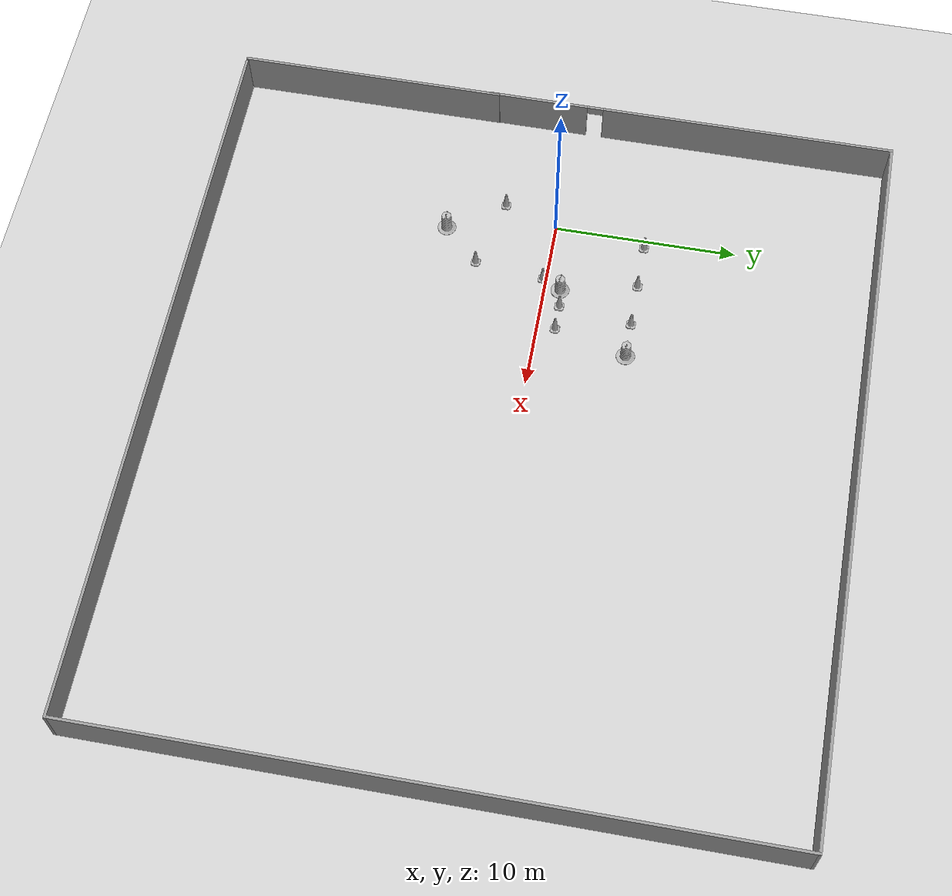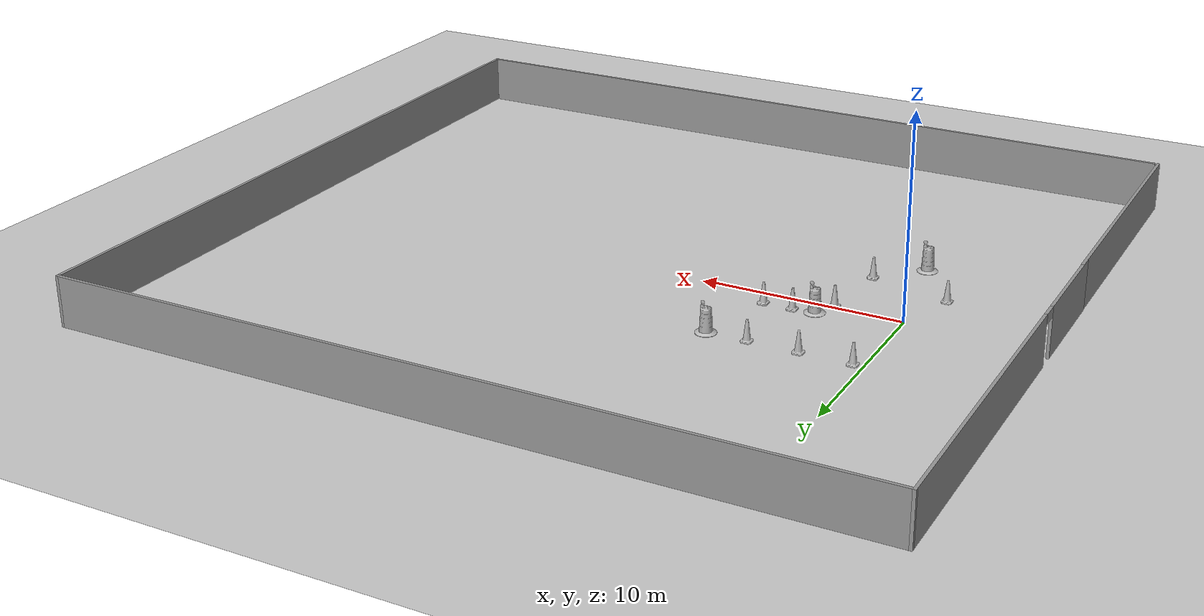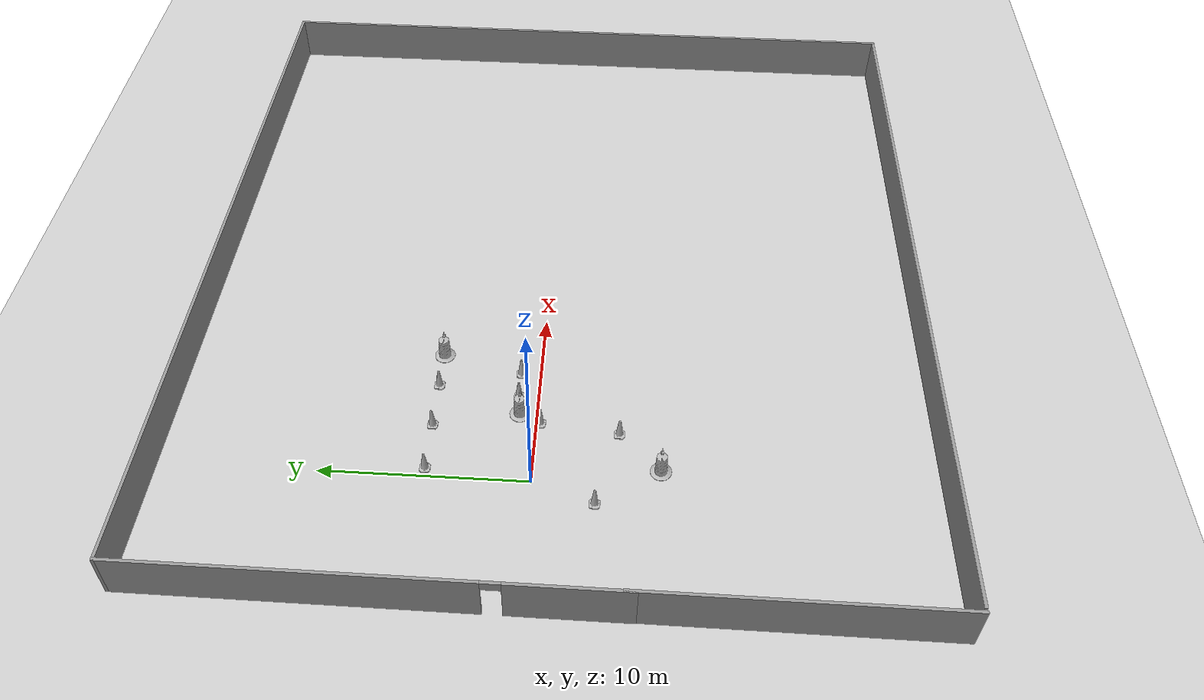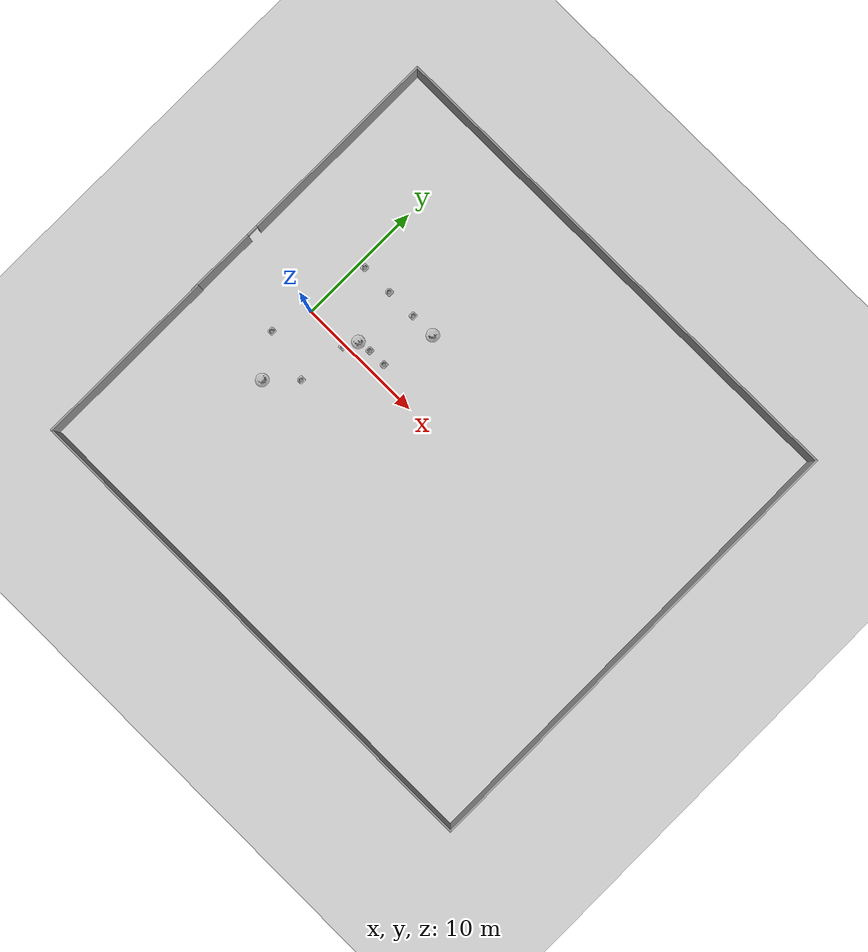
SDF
<sdf version="1.7">
 <world name="default">
  <plugin name="gazebo_ros_state" filename="libgazebo_ros_state.so"><update_rate>1.0</update_rate></plugin>
  <plugin name="gazebo_ros_properties" filename="libgazebo_ros_properties.so"/>
  <light name="sun" type="directional">
   <pose>0 0 10 0 -0 0</pose>
   <diffuse>0.8 0.8 0.8 1</diffuse>
   <specular>0.2 0.2 0.2 1</specular>
   <attenuation>
    <range>1000</range>
    <constant>0.9</constant>
    <linear>0.01</linear>
    <quadratic>0.001</quadratic>
   </attenuation>
   <direction>-0.5 0.1 -0.9</direction>
   <spot><inner_angle>0</inner_angle><outer_angle>0</outer_angle><falloff>0</falloff></spot>
  </light>
  <model name="ground_plane">
   <static>1</static>
   <link name="link">
    <collision name="collision">
     <geometry><plane><normal>0 0 1</normal><size>100 100</size></plane></geometry>
     <surface>
      <contact><collide_bitmask>65535</collide_bitmask></contact>
      <friction><ode><mu>100</mu><mu2>50</mu2></ode></friction>
     </surface>
    </collision>
    <visual name="visual">
     <cast_shadows>0</cast_shadows>
     <geometry><plane><normal>0 0 1</normal><size>100 100</size></plane></geometry>
     <material>
      <script><uri>file://media/materials/scripts/gazebo.material</uri><name>Gazebo/Grey</name></script>
     </material>
    </visual>
   </link>
  </model>
  <gravity>0 0 -9.8</gravity>
  <magnetic_field>6e-06 2.3e-05 -4.2e-05</magnetic_field>
  <atmosphere type="adiabatic"/>
  <physics type="ode">
   <max_step_size>0.001</max_step_size>
   <real_time_factor>1</real_time_factor>
   <real_time_update_rate>1000</real_time_update_rate>
  </physics>
  <scene><ambient>0.4 0.4 0.4 1</ambient><background>0.7 0.7 0.7 1</background><shadows>1</shadows></scene>
  <spherical_coordinates>
   <surface_model>EARTH_WGS84</surface_model>
   <latitude_deg>0</latitude_deg>
   <longitude_deg>0</longitude_deg>
   <elevation>0</elevation>
   <heading_deg>0</heading_deg>
  </spherical_coordinates>
  <model name="Construction Barrel">
   <link name="link">
    <inertial>
     <pose>0 0 0.4 0 -0 0</pose>
     <mass>500</mass>
     <inertia><ixx>51.2096</ixx><iyy>51.2096</iyy><izz>25</izz><ixy>0</ixy><ixz>0</ixz><iyz>0</iyz></inertia>
    </inertial>
    <collision name="collision">
     <geometry><mesh><uri>model://construction_barrel/meshes/construction_barrel.dae</uri></mesh></geometry>
    </collision>
    <visual name="visual">
     <geometry><mesh><uri>model://construction_barrel/meshes/construction_barrel.dae</uri></mesh></geometry>
    </visual>
   </link>
   <pose>3.96011 0.865139 -1e-06 4e-06 -2e-06 -2.8e-05</pose>
  </model>
  <model name="Construction Cone">
   <link name="link">
    <collision name="collision">
     <geometry>
      <mesh><scale>10 10 10</scale><uri>model://construction_cone/meshes/construction_cone.dae</uri></mesh>
     </geometry>
    </collision>
    <visual name="visual">
     <geometry>
      <mesh><scale>10 10 10</scale><uri>model://construction_cone/meshes/construction_cone.dae</uri></mesh>
     </geometry>
    </visual>
    <inertial>
     <inertia><ixx>1</ixx><ixy>0</ixy><ixz>0</ixz><iyy>1</iyy><iyz>0</iyz><izz>1</izz></inertia>
     <mass>1</mass>
    </inertial>
   </link>
   <pose>3.4179 -0.176792 -9e-06 0 -0 0</pose>
  </model>
  <model name="Square_house">
   <pose>13.1962 -0.676405 0 0 -0 0</pose>
   <link name="Wall_1">
    <pose>-19.9248 7.0236 0 0 -0 1.5708</pose>
    <visual name="Wall_1_Visual_0">
     <pose>-8.56298 0 1.25 0 -0 0</pose>
     <geometry><box><size>5.62404 0.15 2.5</size></box></geometry>
     <material>
      <script><uri>file://media/materials/scripts/gazebo.material</uri><name>Gazebo/Grey</name></script>
      <ambient>1 1 1 1</ambient>
     </material>
     <meta><layer>0</layer></meta>
    </visual>
    <collision name="Wall_1_Collision_0">
     <geometry><box><size>5.62404 0.15 2.5</size></box></geometry>
     <pose>-8.56298 0 1.25 0 -0 0</pose>
    </collision>
    <visual name="Wall_1_Visual_1">
     <pose>3.26202 0 1.25 0 -0 0</pose>
     <geometry><box><size>16.226 0.15 2.5</size></box></geometry>
     <material>
      <script><uri>file://media/materials/scripts/gazebo.material</uri><name>Gazebo/Grey</name></script>
      <ambient>1 1 1 1</ambient>
     </material>
     <meta><layer>0</layer></meta>
    </visual>
    <collision name="Wall_1_Collision_1">
     <geometry><box><size>16.226 0.15 2.5</size></box></geometry>
     <pose>3.26202 0 1.25 0 -0 0</pose>
    </collision>
    <visual name="Wall_1_Visual_2">
     <pose>-5.30096 0 2.25 0 -0 0</pose>
     <geometry><box><size>0.9 0.15 0.5</size></box></geometry>
     <material>
      <script><uri>file://media/materials/scripts/gazebo.material</uri><name>Gazebo/Grey</name></script>
      <ambient>1 1 1 1</ambient>
     </material>
     <meta><layer>0</layer></meta>
    </visual>
    <collision name="Wall_1_Collision_2">
     <geometry><box><size>0.9 0.15 0.5</size></box></geometry>
     <pose>-5.30096 0 2.25 0 -0 0</pose>
    </collision>
   </link>
   <link name="Wall_13">
    <collision name="Wall_13_Collision">
     <geometry><box><size>39.75 0.15 2.5</size></box></geometry>
     <pose>0 0 1.25 0 -0 0</pose>
    </collision>
    <visual name="Wall_13_Visual">
     <pose>0 0 1.25 0 -0 0</pose>
     <geometry><box><size>39.75 0.15 2.5</size></box></geometry>
     <material>
      <script><uri>file://media/materials/scripts/gazebo.material</uri><name>Gazebo/Grey</name></script>
      <ambient>1 1 1 1</ambient>
     </material>
     <meta><layer>0</layer></meta>
    </visual>
    <pose>0.124841 -18.3236 0 0 -0 3.14159</pose>
   </link>
   <link name="Wall_2">
    <collision name="Wall_2_Collision">
     <geometry><box><size>40 0.15 2.5</size></box></geometry>
     <pose>0 0 1.25 0 -0 0</pose>
    </collision>
    <visual name="Wall_2_Visual">
     <pose>0 0 1.25 0 -0 0</pose>
     <geometry><box><size>40 0.15 2.5</size></box></geometry>
     <material>
      <script><uri>file://media/materials/scripts/gazebo.material</uri><name>Gazebo/Grey</name></script>
      <ambient>1 1 1 1</ambient>
     </material>
     <meta><layer>0</layer></meta>
    </visual>
    <pose>-0 18.3235 0 0 -0 -5e-06</pose>
   </link>
   <link name="Wall_3">
    <collision name="Wall_3_Collision">
     <geometry><box><size>36.797 0.15 2.5</size></box></geometry>
     <pose>0 0 1.25 0 -0 0</pose>
    </collision>
    <visual name="Wall_3_Visual">
     <pose>0 0 1.25 0 -0 0</pose>
     <geometry><box><size>36.797 0.15 2.5</size></box></geometry>
     <material>
      <script><uri>file://media/materials/scripts/gazebo.material</uri><name>Gazebo/Grey</name></script>
      <ambient>1 1 1 1</ambient>
     </material>
     <meta><layer>0</layer></meta>
    </visual>
    <pose>19.9248 -9.5e-05 0 0 -0 -1.5708</pose>
   </link>
   <link name="Wall_7">
    <collision name="Wall_7_Collision">
     <geometry><box><size>14.675 0.15 2.5</size></box></geometry>
     <pose>0 0 1.25 0 -0 0</pose>
    </collision>
    <visual name="Wall_7_Visual">
     <pose>0 0 1.25 0 -0 0</pose>
     <geometry><box><size>14.675 0.15 2.5</size></box></geometry>
     <material>
      <script><uri>file://media/materials/scripts/gazebo.material</uri><name>Gazebo/Grey</name></script>
      <ambient>1 1 1 1</ambient>
     </material>
     <meta><layer>0</layer></meta>
    </visual>
    <pose>-19.9022 -11.0611 0 0 -0 -1.5708</pose>
   </link>
   <static>1</static>
  </model>
  <model name="Construction Cone_0">
   <link name="link">
    <collision name="collision">
     <geometry>
      <mesh><scale>10 10 10</scale><uri>model://construction_cone/meshes/construction_cone.dae</uri></mesh>
     </geometry>
    </collision>
    <visual name="visual">
     <geometry>
      <mesh><scale>10 10 10</scale><uri>model://construction_cone/meshes/construction_cone.dae</uri></mesh>
     </geometry>
    </visual>
    <inertial>
     <inertia><ixx>1</ixx><ixy>0</ixy><ixz>0</ixz><iyy>1</iyy><iyz>0</iyz><izz>1</izz></inertia>
     <mass>1</mass>
    </inertial>
   </link>
   <pose>0.473991 5 -0 0 -1e-06 0</pose>
  </model>
  <model name="Construction Cone_1">
   <link name="link">
    <collision name="collision">
     <geometry>
      <mesh><scale>10 10 10</scale><uri>model://construction_cone/meshes/construction_cone.dae</uri></mesh>
     </geometry>
    </collision>
    <visual name="visual">
     <geometry>
      <mesh><scale>10 10 10</scale><uri>model://construction_cone/meshes/construction_cone.dae</uri></mesh>
     </geometry>
    </visual>
    <inertial>
     <inertia><ixx>1</ixx><ixy>0</ixy><ixz>0</ixz><iyy>1</iyy><iyz>0</iyz><izz>1</izz></inertia>
     <mass>1</mass>
    </inertial>
   </link>
   <pose>3 5 -0 0 -1e-06 0</pose>
  </model>
  <model name="Construction Cone_2">
   <link name="link">
    <collision name="collision">
     <geometry>
      <mesh><scale>10 10 10</scale><uri>model://construction_cone/meshes/construction_cone.dae</uri></mesh>
     </geometry>
    </collision>
    <visual name="visual">
     <geometry>
      <mesh><scale>10 10 10</scale><uri>model://construction_cone/meshes/construction_cone.dae</uri></mesh>
     </geometry>
    </visual>
    <inertial>
     <inertia><ixx>1</ixx><ixy>0</ixy><ixz>0</ixz><iyy>1</iyy><iyz>0</iyz><izz>1</izz></inertia>
     <mass>1</mass>
    </inertial>
   </link>
   <pose>5.45091 5 -0 0 -0 0</pose>
  </model>
  <model name="Construction Cone_3">
   <link name="link">
    <collision name="collision">
     <geometry>
      <mesh><scale>10 10 10</scale><uri>model://construction_cone/meshes/construction_cone.dae</uri></mesh>
     </geometry>
    </collision>
    <visual name="visual">
     <geometry>
      <mesh><scale>10 10 10</scale><uri>model://construction_cone/meshes/construction_cone.dae</uri></mesh>
     </geometry>
    </visual>
    <inertial>
     <inertia><ixx>1</ixx><ixy>0</ixy><ixz>0</ixz><iyy>1</iyy><iyz>0</iyz><izz>1</izz></inertia>
     <mass>1</mass>
    </inertial>
   </link>
   <pose>5 1 -0 0 -0 0</pose>
  </model>
  <model name="Construction Cone_4">
   <link name="link">
    <collision name="collision">
     <geometry>
      <mesh><scale>10 10 10</scale><uri>model://construction_cone/meshes/construction_cone.dae</uri></mesh>
     </geometry>
    </collision>
    <visual name="visual">
     <geometry>
      <mesh><scale>10 10 10</scale><uri>model://construction_cone/meshes/construction_cone.dae</uri></mesh>
     </geometry>
    </visual>
    <inertial>
     <inertia><ixx>1</ixx><ixy>0</ixy><ixz>0</ixz><iyy>1</iyy><iyz>0</iyz><izz>1</izz></inertia>
     <mass>1</mass>
    </inertial>
   </link>
   <pose>6.44482 1 -0 0 -0 0</pose>
  </model>
  <model name="Construction Barrel_0">
   <link name="link">
    <inertial>
     <pose>0 0 0.4 0 -0 0</pose>
     <mass>500</mass>
     <inertia><ixx>51.2096</ixx><iyy>51.2096</iyy><izz>25</izz><ixy>0</ixy><ixz>0</ixz><iyz>0</iyz></inertia>
    </inertial>
    <collision name="collision">
     <geometry><mesh><uri>model://construction_barrel/meshes/construction_barrel.dae</uri></mesh></geometry>
    </collision>
    <visual name="visual">
     <geometry><mesh><uri>model://construction_barrel/meshes/construction_barrel.dae</uri></mesh></geometry>
    </visual>
   </link>
   <pose>7.44577 4.99999 -1e-06 -8e-06 -2e-06 -9e-06</pose>
  </model>
  <model name="Construction Cone_5">
   <link name="link">
    <collision name="collision">
     <geometry>
      <mesh><scale>10 10 10</scale><uri>model://construction_cone/meshes/construction_cone.dae</uri></mesh>
     </geometry>
    </collision>
    <visual name="visual">
     <geometry>
      <mesh><scale>10 10 10</scale><uri>model://construction_cone/meshes/construction_cone.dae</uri></mesh>
     </geometry>
    </visual>
    <inertial>
     <inertia><ixx>1</ixx><ixy>0</ixy><ixz>0</ixz><iyy>1</iyy><iyz>0</iyz><izz>1</izz></inertia>
     <mass>1</mass>
    </inertial>
   </link>
   <pose>3 -4 -8e-06 0 1e-06 0</pose>
  </model>
  <model name="Construction Cone_6">
   <link name="link">
    <collision name="collision">
     <geometry>
      <mesh><scale>10 10 10</scale><uri>model://construction_cone/meshes/construction_cone.dae</uri></mesh>
     </geometry>
    </collision>
    <visual name="visual">
     <geometry>
      <mesh><scale>10 10 10</scale><uri>model://construction_cone/meshes/construction_cone.dae</uri></mesh>
     </geometry>
    </visual>
    <inertial>
     <inertia><ixx>1</ixx><ixy>0</ixy><ixz>0</ixz><iyy>1</iyy><iyz>0</iyz><izz>1</izz></inertia>
     <mass>1</mass>
    </inertial>
   </link>
   <pose>-1 -3 0 -0 -0 -0</pose>
  </model>
  <model name="Construction Barrel_1">
   <link name="link">
    <inertial>
     <pose>0 0 0.4 0 -0 0</pose>
     <mass>500</mass>
     <inertia><ixx>51.2096</ixx><iyy>51.2096</iyy><izz>25</izz><ixy>0</ixy><ixz>0</ixz><iyz>0</iyz></inertia>
    </inertial>
    <collision name="collision">
     <geometry><mesh><uri>model://construction_barrel/meshes/construction_barrel.dae</uri></mesh></geometry>
    </collision>
    <visual name="visual">
     <geometry><mesh><uri>model://construction_barrel/meshes/construction_barrel.dae</uri></mesh></geometry>
    </visual>
   </link>
   <pose>0.999988 -6 -2e-06 -0 7e-06 -4e-06</pose>
  </model>
 </world>
</sdf>
